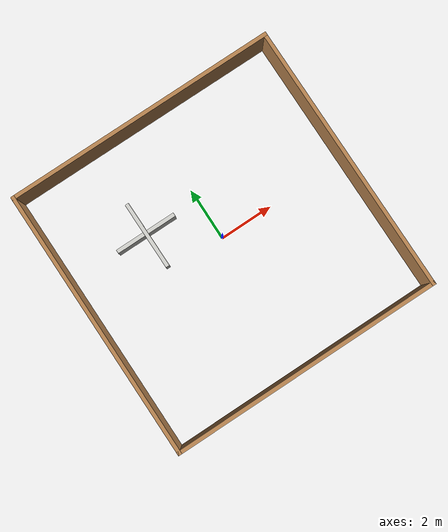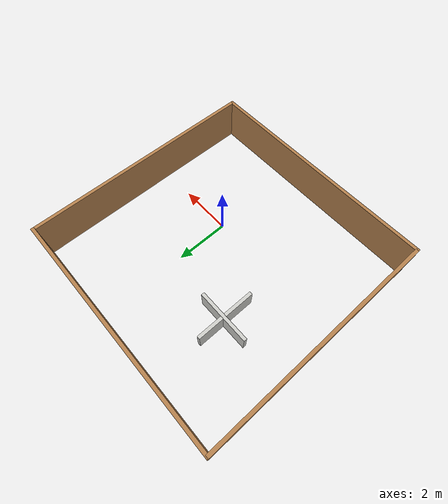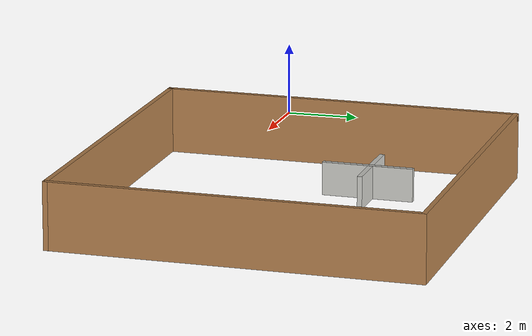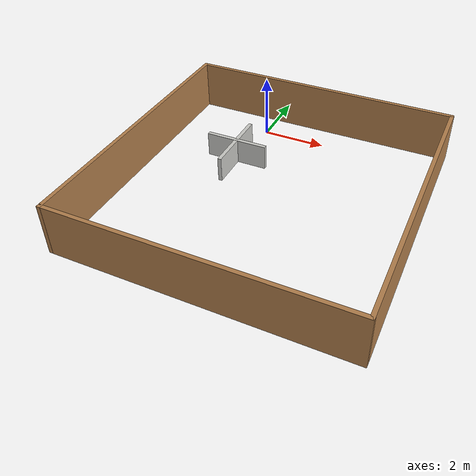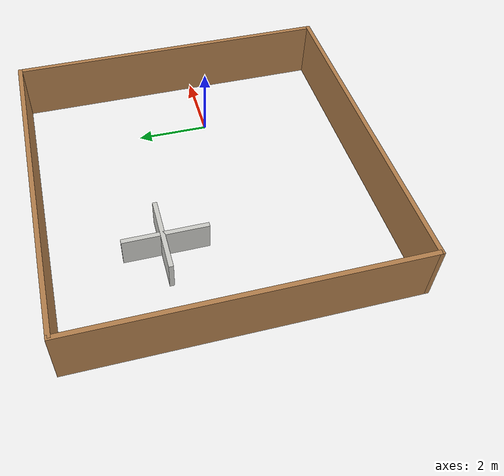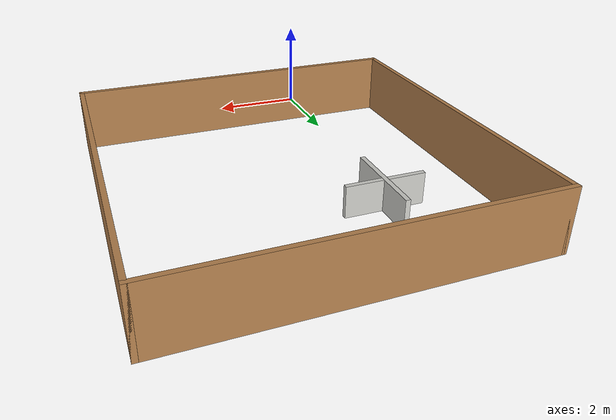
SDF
<sdf version='1.6'>
  <world name='default'>

  <light name='sun' type='directional'>
    <cast_shadows>1</cast_shadows>
    <pose frame=''>0 0 10 0 -0 0</pose>
    <diffuse>0.8 0.8 0.8 1</diffuse>
    <specular>0.1 0.1 0.1 1</specular>
    <attenuation>
      <range>1000</range>
      <constant>0.9</constant>
      <linear>0.01</linear>
      <quadratic>0.001</quadratic>
    </attenuation>
    <direction>-0.5 0.5 -1</direction>
  </light>

  <model name='box'>
    <pose>0 0 -3 0 0 0</pose>
    <static>1</static>
    <link name='Wall_1'>
      <pose frame=''>0 5.425 0 0 -0 0</pose>
      <visual name='Wall_1_Visual'>
        <pose frame=''>0 0 1 0 -0 0</pose>
        <geometry>
          <box>
            <size>11 0.15 2</size>
          </box>
        </geometry>
        <material>
          <script>
            <uri>file://media/materials/scripts/gazebo.material</uri>
            <name>Gazebo/Wood</name>
          </script>
        </material>
      </visual>
      <collision name='Wall_1_Collision'>
        <pose frame=''>0 0 1 0 -0 0</pose>
        <geometry>
          <box>
            <size>11 0.15 2</size>
          </box>
        </geometry>
        <max_contacts>10</max_contacts>
        <surface>
          <bounce/>
          <friction>
            <ode/>
          </friction>
          <contact>
            <ode/>
          </contact>
        </surface>
      </collision>
    </link>

    <link name='Wall_2'>
      <pose frame=''>5.425 0 0 0 0 -1.5708</pose>
      <visual name='Wall_2_Visual'>
        <pose frame=''>0 0 1 0 -0 0</pose>
        <geometry>
          <box>
            <size>11 0.15 2</size>
          </box>
        </geometry>
        <material>
          <script>
            <uri>file://media/materials/scripts/gazebo.material</uri>
            <name>Gazebo/Wood</name>
          </script>
        </material>
      </visual>
      <collision name='Wall_2_Collision'>
        <pose frame=''>0 0 1 0 -0 0</pose>
        <geometry>
          <box>
            <size>11 0.15 2</size>
          </box>
        </geometry>
        <max_contacts>10</max_contacts>
        <surface>
          <bounce/>
          <friction>
            <ode/>
          </friction>
          <contact>
            <ode/>
          </contact>
        </surface>
      </collision>
    </link>

    <link name='Wall_3'>
      <pose frame=''>0 -5.425 0 0 -0 3.14159</pose>
      <visual name='Wall_3_Visual'>
        <pose frame=''>0 0 1 0 -0 0</pose>
        <geometry>
          <box>
            <size>11 0.15 2</size>
          </box>
        </geometry>
        <material>
          <script>
            <uri>file://media/materials/scripts/gazebo.material</uri>
            <name>Gazebo/Wood</name>
          </script>
        </material>
      </visual>
      <collision name='Wall_3_Collision'>
        <pose frame=''>0 0 1 0 -0 0</pose>
        <geometry>
          <box>
            <size>11 0.15 2</size>
          </box>
        </geometry>
        <max_contacts>10</max_contacts>
        <surface>
          <bounce/>
          <friction>
            <ode/>
          </friction>
          <contact>
            <ode/>
          </contact>
        </surface>
      </collision>
    </link>

    <link name='Wall_4'>
      <pose frame=''>-5.425 0 0 0 -0 1.5708</pose>
      <visual name='Wall_4_Visual'>
        <pose frame=''>0 0 1 0 -0 0</pose>
        <geometry>
          <box>
            <size>11 0.15 2</size>
          </box>
        </geometry>
        <material>
          <script>
            <uri>file://media/materials/scripts/gazebo.material</uri>
            <name>Gazebo/Wood</name>
          </script>
        </material>
      </visual>
      <collision name='Wall_4_Collision'>
        <pose frame=''>0 0 1 0 -0 0</pose>
        <geometry>
          <box>
            <size>11 0.15 2</size>
          </box>
        </geometry>
        <max_contacts>10</max_contacts>
        <surface>
          <bounce/>
          <friction>
            <ode/>
          </friction>
          <contact>
            <ode/>
          </contact>
        </surface>
      </collision>
    </link>

  </model>

  <model name='cross'>
    <pose>0 0 -3 0 0 0</pose>
    <static>1</static>
    <link name='Wall_5'>
      <pose frame=''>-2.152 1.857 0 0 -0 0</pose>
      <visual name='Wall_5_Visual'>
        <pose frame=''>0 0 0.5 0 -0 0</pose>
        <geometry>
          <box>
            <size>2.5 0.15 1</size>
          </box>
        </geometry>
        <material>
          <script>
            <uri>file://media/materials/scripts/gazebo.material</uri>
            <name>Gazebo/CeilingTiled</name>
          </script>
        </material>
      </visual>
      <collision name='Wall_5_Collision'>
        <pose frame=''>0 0 0.5 0 -0 0</pose>
        <geometry>
          <box>
            <size>2.5 0.15 1</size>
          </box>
        </geometry>
        <max_contacts>10</max_contacts>
        <surface>
          <bounce/>
          <friction>
            <ode/>
          </friction>
          <contact>
            <ode/>
          </contact>
        </surface>
      </collision>
    </link>

    <link name='Wall_6'>
      <pose frame=''>-2.155 1.764 0 0 0 -1.5708</pose>
      <visual name='Wall_6_Visual'>
        <pose frame=''>0 0 0.5 0 -0 0</pose>
        <geometry>
          <box>
            <size>2.75 0.15 1</size>
          </box>
        </geometry>
        <material>
          <script>
            <uri>file://media/materials/scripts/gazebo.material</uri>
            <name>Gazebo/CeilingTiled</name>
          </script>
        </material>
      </visual>
      <collision name='Wall_6_Collision'>
        <pose frame=''>0 0 0.5 0 -0 0</pose>
        <geometry>
          <box>
            <size>2.75 0.15 1</size>
          </box>
        </geometry>
        <max_contacts>10</max_contacts>
        <surface>
          <bounce/>
          <friction>
            <ode/>
          </friction>
          <contact>
            <ode/>
          </contact>
        </surface>
      </collision>
    </link>

  </model>

  </world>
</sdf>
